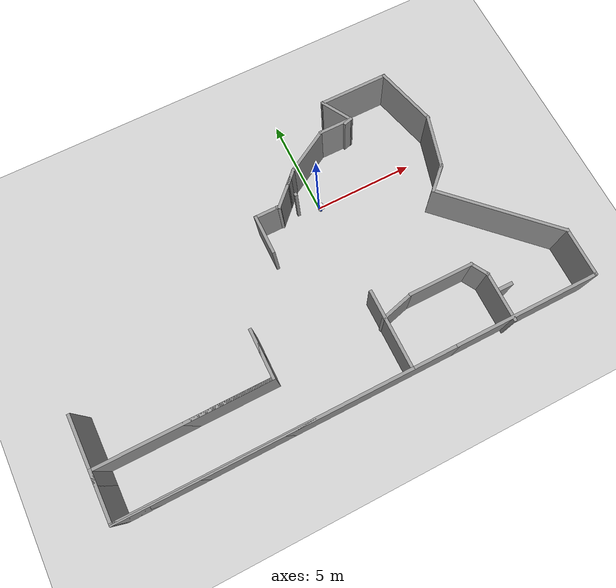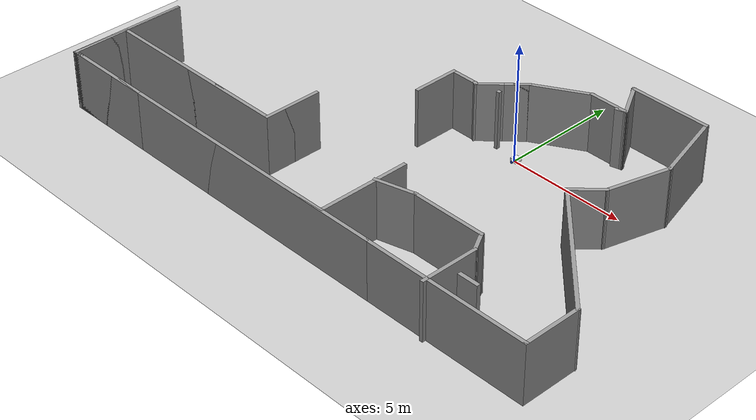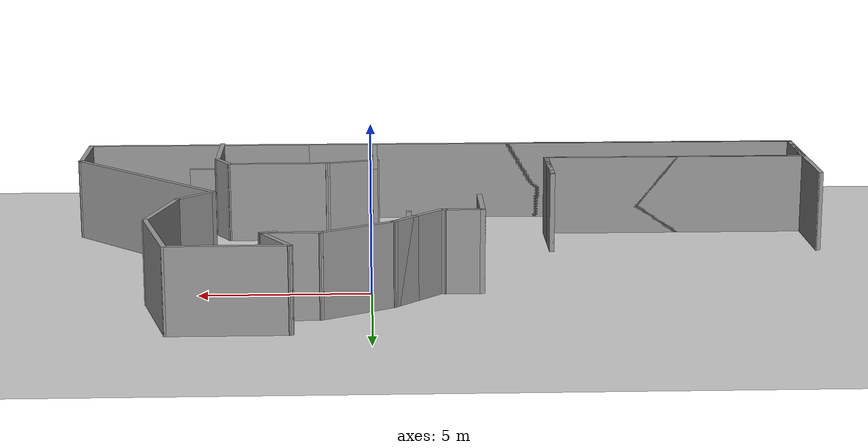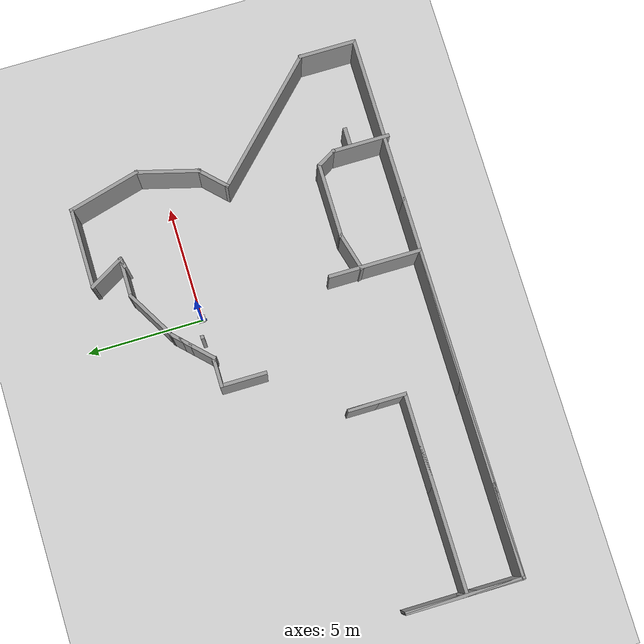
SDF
<sdf version="1.7">
 <world name="default">
  <light name="sun" type="directional">
   <pose>0 0 10 0 -0 0</pose>
   <diffuse>0.8 0.8 0.8 1</diffuse>
   <specular>0.2 0.2 0.2 1</specular>
   <attenuation>
    <range>1000</range>
    <constant>0.9</constant>
    <linear>0.01</linear>
    <quadratic>0.001</quadratic>
   </attenuation>
   <direction>-0.5 0.1 -0.9</direction>
   <spot><inner_angle>0</inner_angle><outer_angle>0</outer_angle><falloff>0</falloff></spot>
  </light>
  <model name="ground_plane">
   <static>1</static>
   <link name="link">
    <collision name="collision">
     <geometry><plane><normal>0 0 1</normal><size>100 100</size></plane></geometry>
     <surface><friction><ode><mu>100</mu><mu2>50</mu2></ode></friction></surface>
    </collision>
    <visual name="visual">
     <cast_shadows>0</cast_shadows>
     <geometry><plane><normal>0 0 1</normal><size>100 100</size></plane></geometry>
     <material>
      <script><uri>file://media/materials/scripts/gazebo.material</uri><name>Gazebo/Grey</name></script>
     </material>
    </visual>
   </link>
  </model>
  <gravity>0 0 -9.8</gravity>
  <magnetic_field>6e-06 2.3e-05 -4.2e-05</magnetic_field>
  <atmosphere type="adiabatic"/>
  <physics type="ode">
   <max_step_size>0.001</max_step_size>
   <real_time_factor>1</real_time_factor>
   <real_time_update_rate>1000</real_time_update_rate>
  </physics>
  <scene><ambient>0.4 0.4 0.4 1</ambient><background>0.7 0.7 0.7 1</background><shadows>1</shadows></scene>
  <audio><device>default</device></audio>
  <spherical_coordinates>
   <surface_model>EARTH_WGS84</surface_model>
   <latitude_deg>0</latitude_deg>
   <longitude_deg>0</longitude_deg>
   <elevation>0</elevation>
   <heading_deg>0</heading_deg>
  </spherical_coordinates>
  <model name="my_bot">
   <link name="base_link">
    <inertial>
     <pose>0.065 0 0.0625 0 -0 0</pose>
     <mass>0.6</mass>
     <inertia>
      <ixx>0.00525625</ixx>
      <ixy>0</ixy>
      <ixz>0.0005625</ixz>
      <iyy>0.00593125</iyy>
      <iyz>0</iyz>
      <izz>0.008275</izz>
     </inertia>
    </inertial>
    <collision name="base_link_fixed_joint_lump__chassis_collision">
     <pose>0.05 0 0.075 0 -0 0</pose>
     <geometry><box><size>0.3 0.3 0.15</size></box></geometry>
    </collision>
    <collision name="base_link_fixed_joint_lump__caster_wheel_collision_1">
     <pose>0.14 0 0 0 -0 0</pose>
     <geometry><sphere><radius>0.05</radius></sphere></geometry>
     <surface><friction><ode><mu>0.001</mu><mu2>0.001</mu2></ode></friction></surface>
    </collision>
    <visual name="base_link_fixed_joint_lump__chassis_visual">
     <pose>0.05 0 0.075 0 -0 0</pose>
     <geometry><box><size>0.3 0.3 0.15</size></box></geometry>
     <material>
      <script><name>Gazebo/White</name><uri>file://media/materials/scripts/gazebo.material</uri></script>
     </material>
    </visual>
    <visual name="base_link_fixed_joint_lump__caster_wheel_visual_1">
     <pose>0.14 0 0 0 -0 0</pose>
     <geometry><sphere><radius>0.05</radius></sphere></geometry>
     <material>
      <script><name>Gazebo/Black</name><uri>file://media/materials/scripts/gazebo.material</uri></script>
     </material>
    </visual>
   </link>
   <joint name="left_wheel_joint" type="revolute">
    <pose relative_to="base_link">0 0.175 0 -1.5708 0 0</pose>
    <parent>base_link</parent>
    <child>left_wheel</child>
    <axis>
     <xyz>0 0 1</xyz>
     <limit><lower>-1e+16</lower><upper>1e+16</upper></limit>
     <dynamics><spring_reference>0</spring_reference><spring_stiffness>0</spring_stiffness></dynamics>
    </axis>
   </joint>
   <link name="left_wheel">
    <pose relative_to="left_wheel_joint">0 0 0 0 -0 0</pose>
    <inertial>
     <mass>0.1</mass>
     <inertia>
      <ixx>7.58333e-05</ixx>
      <ixy>0</ixy>
      <ixz>0</ixz>
      <iyy>7.58333e-05</iyy>
      <iyz>0</iyz>
      <izz>0.000125</izz>
     </inertia>
    </inertial>
    <collision name="left_wheel_collision">
     <geometry><cylinder><length>0.04</length><radius>0.05</radius></cylinder></geometry>
    </collision>
    <visual name="left_wheel_visual">
     <geometry><cylinder><length>0.04</length><radius>0.05</radius></cylinder></geometry>
     <material>
      <script><name>Gazebo/Blue</name><uri>file://media/materials/scripts/gazebo.material</uri></script>
     </material>
    </visual>
   </link>
   <joint name="right_wheel_joint" type="revolute">
    <pose relative_to="base_link">0 -0.175 0 1.5708 -0 0</pose>
    <parent>base_link</parent>
    <child>right_wheel</child>
    <axis>
     <xyz>0 0 -1</xyz>
     <limit><lower>-1e+16</lower><upper>1e+16</upper></limit>
     <dynamics><spring_reference>0</spring_reference><spring_stiffness>0</spring_stiffness></dynamics>
    </axis>
   </joint>
   <link name="right_wheel">
    <pose relative_to="right_wheel_joint">0 0 0 0 -0 0</pose>
    <inertial>
     <mass>0.1</mass>
     <inertia>
      <ixx>7.58333e-05</ixx>
      <ixy>0</ixy>
      <ixz>0</ixz>
      <iyy>7.58333e-05</iyy>
      <iyz>0</iyz>
      <izz>0.000125</izz>
     </inertia>
    </inertial>
    <collision name="right_wheel_collision">
     <geometry><cylinder><length>0.04</length><radius>0.05</radius></cylinder></geometry>
    </collision>
    <visual name="right_wheel_visual">
     <geometry><cylinder><length>0.04</length><radius>0.05</radius></cylinder></geometry>
     <material>
      <script><name>Gazebo/Blue</name><uri>file://media/materials/scripts/gazebo.material</uri></script>
     </material>
    </visual>
   </link>
   <static>0</static>
   <plugin name="diff_drive" filename="libgazebo_ros_diff_drive.so">
    <left_joint>left_wheel_joint</left_joint>
    <right_joint>right_wheel_joint</right_joint>
    <wheel_separation>0.35</wheel_separation>
    <wheel_diameter>0.1</wheel_diameter>
    <max_wheel_torque>200</max_wheel_torque>
    <max_wheel_acceleration>10.0</max_wheel_acceleration>
    <odometry_frame>odom</odometry_frame>
    <robot_base_frame>base_link</robot_base_frame>
    <publish_odom>1</publish_odom>
    <publish_odom_tf>1</publish_odom_tf>
    <publish_wheel_tf>1</publish_wheel_tf>
   </plugin>
   <pose>0.017814 5.7e-05 0.05 0 1e-06 0.000295</pose>
  </model>
  <light name="user_point_light_0" type="point">
   <pose>21.8249 5.31355 1 0 -0 0</pose>
   <diffuse>0.5 0.5 0.5 1</diffuse>
   <specular>0.1 0.1 0.1 1</specular>
   <attenuation>
    <range>20</range>
    <constant>0.5</constant>
    <linear>0.01</linear>
    <quadratic>0.001</quadratic>
   </attenuation>
   <cast_shadows>0</cast_shadows>
   <direction>0 0 -1</direction>
  </light>
  <model name="tuhafWorld">
   <pose>-2.36436 -2.81863 0 0 -0 0</pose>
   <link name="Door_0">
    <collision name="Door_0_Collision">
     <geometry><box><size>0.9 0.17 2</size></box></geometry>
     <pose>0 0 1 0 -0 0</pose>
    </collision>
    <visual name="Door_0_Visual">
     <pose>0 0 1 0 -0 0</pose>
     <geometry><box><size>0.9 0.17 2</size></box></geometry>
     <material>
      <script><uri>file://media/materials/scripts/gazebo.material</uri><name>Gazebo/Grey</name></script>
     </material>
    </visual>
    <pose>7.78225 -5.18129 0 0 -0 0</pose>
   </link>
   <link name="Wall_0">
    <collision name="Wall_0_Collision">
     <geometry><box><size>2 0.15 2.5</size></box></geometry>
     <pose>0 0 1.25 0 -0 0</pose>
    </collision>
    <visual name="Wall_0_Visual">
     <pose>0 0 1.25 0 -0 0</pose>
     <geometry><box><size>2 0.15 2.5</size></box></geometry>
     <material>
      <script><uri>file://media/materials/scripts/gazebo.material</uri><name>Gazebo/Grey</name></script>
      <ambient>1 1 1 1</ambient>
     </material>
     <meta><layer>0</layer></meta>
    </visual>
    <pose>-0.835636 1.86363 0 0 -0 1.5708</pose>
   </link>
   <link name="Wall_1">
    <collision name="Wall_1_Collision">
     <geometry><box><size>1.25 0.15 2.5</size></box></geometry>
     <pose>0 0 1.25 0 -0 0</pose>
    </collision>
    <visual name="Wall_1_Visual">
     <pose>0 0 1.25 0 -0 0</pose>
     <geometry><box><size>1.25 0.15 2.5</size></box></geometry>
     <material>
      <script><uri>file://media/materials/scripts/gazebo.material</uri><name>Gazebo/Grey</name></script>
      <ambient>1 1 1 1</ambient>
     </material>
     <meta><layer>0</layer></meta>
    </visual>
    <pose>-0.285636 2.78863 0 0 -0 0</pose>
   </link>
   <link name="Wall_10">
    <collision name="Wall_10_Collision">
     <geometry><box><size>1.75 0.15 2.5</size></box></geometry>
     <pose>0 0 1.25 0 -0 0</pose>
    </collision>
    <visual name="Wall_10_Visual">
     <pose>0 0 1.25 0 -0 0</pose>
     <geometry><box><size>1.75 0.15 2.5</size></box></geometry>
     <material>
      <script><uri>file://media/materials/scripts/gazebo.material</uri><name>Gazebo/Grey</name></script>
      <ambient>1 1 1 1</ambient>
     </material>
     <meta><layer>0</layer></meta>
    </visual>
    <pose>4.56952 5.32363 0 0 -0 0</pose>
   </link>
   <link name="Wall_11">
    <collision name="Wall_11_Collision">
     <geometry><box><size>0.5 0.15 2.5</size></box></geometry>
     <pose>0 0 1.25 0 -0 0</pose>
    </collision>
    <visual name="Wall_11_Visual">
     <pose>0 0 1.25 0 -0 0</pose>
     <geometry><box><size>0.5 0.15 2.5</size></box></geometry>
     <material>
      <script><uri>file://media/materials/scripts/gazebo.material</uri><name>Gazebo/Grey</name></script>
      <ambient>1 1 1 1</ambient>
     </material>
     <meta><layer>0</layer></meta>
    </visual>
    <pose>5.20049 5.27834 0 0 -0 -2.87979</pose>
   </link>
   <link name="Wall_13">
    <collision name="Wall_13_Collision">
     <geometry><box><size>1.75 0.15 2.5</size></box></geometry>
     <pose>0 0 1.25 0 -0 0</pose>
    </collision>
    <visual name="Wall_13_Visual">
     <pose>0 0 1.25 0 -0 0</pose>
     <geometry><box><size>1.75 0.15 2.5</size></box></geometry>
     <material>
      <script><uri>file://media/materials/scripts/gazebo.material</uri><name>Gazebo/Grey</name></script>
      <ambient>1 1 1 1</ambient>
     </material>
     <meta><layer>0</layer></meta>
    </visual>
    <pose>4.96952 6.01645 0 0 -0 2.0944</pose>
   </link>
   <link name="Wall_14">
    <collision name="Wall_14_Collision">
     <geometry><box><size>3.5 0.15 2.5</size></box></geometry>
     <pose>0 0 1.25 0 -0 0</pose>
    </collision>
    <visual name="Wall_14_Visual">
     <pose>0 0 1.25 0 -0 0</pose>
     <geometry><box><size>3.5 0.15 2.5</size></box></geometry>
     <material>
      <script><uri>file://media/materials/scripts/gazebo.material</uri><name>Gazebo/Grey</name></script>
      <ambient>1 1 1 1</ambient>
     </material>
     <meta><layer>0</layer></meta>
    </visual>
    <pose>6.24452 6.70927 0 0 -0 0</pose>
   </link>
   <link name="Wall_15">
    <collision name="Wall_15_Collision">
     <geometry><box><size>3.25 0.15 2.5</size></box></geometry>
     <pose>0 0 1.25 0 -0 0</pose>
    </collision>
    <visual name="Wall_15_Visual">
     <pose>0 0 1.25 0 -0 0</pose>
     <geometry><box><size>3.25 0.15 2.5</size></box></geometry>
     <material>
      <script><uri>file://media/materials/scripts/gazebo.material</uri><name>Gazebo/Grey</name></script>
      <ambient>1 1 1 1</ambient>
     </material>
     <meta><layer>0</layer></meta>
    </visual>
    <pose>8.32069 5.21209 0 0 -0 -1.309</pose>
   </link>
   <link name="Wall_16">
    <collision name="Wall_16_Collision">
     <geometry><box><size>2.75 0.15 2.5</size></box></geometry>
     <pose>0 0 1.25 0 -0 0</pose>
    </collision>
    <visual name="Wall_16_Visual">
     <pose>0 0 1.25 0 -0 0</pose>
     <geometry><box><size>2.75 0.15 2.5</size></box></geometry>
     <material>
      <script><uri>file://media/materials/scripts/gazebo.material</uri><name>Gazebo/Grey</name></script>
      <ambient>1 1 1 1</ambient>
     </material>
     <meta><layer>0</layer></meta>
    </visual>
    <pose>8.3854 2.4592 0 0 -0 -1.8326</pose>
   </link>
   <link name="Wall_17">
    <collision name="Wall_17_Collision">
     <geometry><box><size>1.5 0.15 2.5</size></box></geometry>
     <pose>0 0 1.25 0 -0 0</pose>
    </collision>
    <visual name="Wall_17_Visual">
     <pose>0 0 1.25 0 -0 0</pose>
     <geometry><box><size>1.5 0.15 2.5</size></box></geometry>
     <material>
      <script><uri>file://media/materials/scripts/gazebo.material</uri><name>Gazebo/Grey</name></script>
      <ambient>1 1 1 1</ambient>
     </material>
     <meta><layer>0</layer></meta>
    </visual>
    <pose>7.57164 0.7262 0 0 -0 -2.35619</pose>
   </link>
   <link name="Wall_19">
    <collision name="Wall_19_Collision">
     <geometry><box><size>6.5 0.15 2.5</size></box></geometry>
     <pose>0 0 1.25 0 -0 0</pose>
    </collision>
    <visual name="Wall_19_Visual">
     <pose>0 0 1.25 0 -0 0</pose>
     <geometry><box><size>6.5 0.15 2.5</size></box></geometry>
     <material>
      <script><uri>file://media/materials/scripts/gazebo.material</uri><name>Gazebo/Grey</name></script>
      <ambient>1 1 1 1</ambient>
     </material>
     <meta><layer>0</layer></meta>
    </visual>
    <pose>9.3394 -1.99616 0 0 -0 -0.785398</pose>
   </link>
   <link name="Wall_2">
    <collision name="Wall_2_Collision">
     <geometry><box><size>0.239443 0.15 2.5</size></box></geometry>
     <pose>0 0 1.25 0 -0 0</pose>
    </collision>
    <visual name="Wall_2_Visual">
     <pose>0 0 1.25 0 -0 0</pose>
     <geometry><box><size>0.239443 0.15 2.5</size></box></geometry>
     <material>
      <script><uri>file://media/materials/scripts/gazebo.material</uri><name>Gazebo/Grey</name></script>
      <ambient>1 1 1 1</ambient>
     </material>
     <meta><layer>0</layer></meta>
    </visual>
    <pose>0.304364 2.76863 0 0 -0 -0.463648</pose>
   </link>
   <link name="Wall_20">
    <collision name="Wall_20_Collision">
     <geometry><box><size>2.5 0.15 2.5</size></box></geometry>
     <pose>0 0 1.25 0 -0 0</pose>
    </collision>
    <visual name="Wall_20_Visual">
     <pose>0 0 1.25 0 -0 0</pose>
     <geometry><box><size>2.5 0.15 2.5</size></box></geometry>
     <material>
      <script><uri>file://media/materials/scripts/gazebo.material</uri><name>Gazebo/Grey</name></script>
      <ambient>1 1 1 1</ambient>
     </material>
     <meta><layer>0</layer></meta>
    </visual>
    <pose>11.5845 -5.41622 0 0 -0 -1.5708</pose>
   </link>
   <link name="Wall_21">
    <collision name="Wall_21_Collision">
     <geometry><box><size>7.25 0.15 2.5</size></box></geometry>
     <pose>0 0 1.25 0 -0 0</pose>
    </collision>
    <visual name="Wall_21_Visual">
     <pose>0 0 1.25 0 -0 0</pose>
     <geometry><box><size>7.25 0.15 2.5</size></box></geometry>
     <material>
      <script><uri>file://media/materials/scripts/gazebo.material</uri><name>Gazebo/Grey</name></script>
      <ambient>1 1 1 1</ambient>
     </material>
     <meta><layer>0</layer></meta>
    </visual>
    <pose>8.03447 -6.59122 0 0 -0 3.14159</pose>
   </link>
   <link name="Wall_22">
    <collision name="Wall_22_Collision">
     <geometry><box><size>16.25 0.15 2.5</size></box></geometry>
     <pose>0 0 1.25 0 -0 0</pose>
    </collision>
    <visual name="Wall_22_Visual">
     <pose>0 0 1.25 0 -0 0</pose>
     <geometry><box><size>16.25 0.15 2.5</size></box></geometry>
     <material>
      <script><uri>file://media/materials/scripts/gazebo.material</uri><name>Gazebo/Grey</name></script>
      <ambient>1 1 1 1</ambient>
     </material>
     <meta><layer>0</layer></meta>
    </visual>
    <pose>-3.56553 -6.59122 0 0 -0 3.14159</pose>
   </link>
   <link name="Wall_23">
    <collision name="Wall_23_Collision">
     <geometry><box><size>5 0.15 2.5</size></box></geometry>
     <pose>0 0 1.25 0 -0 0</pose>
    </collision>
    <visual name="Wall_23_Visual">
     <pose>0 0 1.25 0 -0 0</pose>
     <geometry><box><size>5 0.15 2.5</size></box></geometry>
     <material>
      <script><uri>file://media/materials/scripts/gazebo.material</uri><name>Gazebo/Grey</name></script>
      <ambient>1 1 1 1</ambient>
     </material>
     <meta><layer>0</layer></meta>
    </visual>
    <pose>-11.6155 -4.16622 0 0 -0 1.5708</pose>
   </link>
   <link name="Wall_24">
    <collision name="Wall_24_Collision">
     <geometry><box><size>5 0.15 2.5</size></box></geometry>
     <pose>0 0 1.25 0 -0 0</pose>
    </collision>
    <visual name="Wall_24_Visual">
     <pose>0 0 1.25 0 -0 0</pose>
     <geometry><box><size>5 0.15 2.5</size></box></geometry>
     <material>
      <script><uri>file://media/materials/scripts/gazebo.material</uri><name>Gazebo/Grey</name></script>
      <ambient>1 1 1 1</ambient>
     </material>
     <meta><layer>0</layer></meta>
    </visual>
    <pose>-11.6155 -4.16622 0 0 -0 -1.5708</pose>
   </link>
   <link name="Wall_25">
    <collision name="Wall_25_Collision">
     <geometry><box><size>4 0.15 2.5</size></box></geometry>
     <pose>0 0 1.25 0 -0 0</pose>
    </collision>
    <visual name="Wall_25_Visual">
     <pose>0 0 1.25 0 -0 0</pose>
     <geometry><box><size>4 0.15 2.5</size></box></geometry>
     <material>
      <script><uri>file://media/materials/scripts/gazebo.material</uri><name>Gazebo/Grey</name></script>
      <ambient>1 1 1 1</ambient>
     </material>
     <meta><layer>0</layer></meta>
    </visual>
    <pose>-9.69053 -6.59122 0 0 -0 0</pose>
   </link>
   <link name="Wall_26">
    <collision name="Wall_26_Collision">
     <geometry><box><size>0.15 0.15 2.5</size></box></geometry>
     <pose>0 0 1.25 0 -0 0</pose>
    </collision>
    <visual name="Wall_26_Visual">
     <pose>0 0 1.25 0 -0 0</pose>
     <geometry><box><size>0.15 0.15 2.5</size></box></geometry>
     <material>
      <script><uri>file://media/materials/scripts/gazebo.material</uri><name>Gazebo/Grey</name></script>
      <ambient>1 1 1 1</ambient>
     </material>
     <meta><layer>0</layer></meta>
    </visual>
    <pose>-7.76553 -6.59122 0 0 -0 0</pose>
   </link>
   <link name="Wall_27">
    <collision name="Wall_27_Collision">
     <geometry><box><size>4 0.15 2.5</size></box></geometry>
     <pose>0 0 1.25 0 -0 0</pose>
    </collision>
    <visual name="Wall_27_Visual">
     <pose>0 0 1.25 0 -0 0</pose>
     <geometry><box><size>4 0.15 2.5</size></box></geometry>
     <material>
      <script><uri>file://media/materials/scripts/gazebo.material</uri><name>Gazebo/Grey</name></script>
      <ambient>1 1 1 1</ambient>
     </material>
     <meta><layer>0</layer></meta>
    </visual>
    <pose>-9.69053 -6.59122 0 0 -0 3.14159</pose>
   </link>
   <link name="Wall_28">
    <collision name="Wall_28_Collision">
     <geometry><box><size>2.5 0.15 2.5</size></box></geometry>
     <pose>0 0 1.25 0 -0 0</pose>
    </collision>
    <visual name="Wall_28_Visual">
     <pose>0 0 1.25 0 -0 0</pose>
     <geometry><box><size>2.5 0.15 2.5</size></box></geometry>
     <material>
      <script><uri>file://media/materials/scripts/gazebo.material</uri><name>Gazebo/Grey</name></script>
      <ambient>1 1 1 1</ambient>
     </material>
     <meta><layer>0</layer></meta>
    </visual>
    <pose>-11.6155 -5.41622 0 0 -0 1.5708</pose>
   </link>
   <link name="Wall_29">
    <collision name="Wall_29_Collision">
     <geometry><box><size>8.5 0.15 2.5</size></box></geometry>
     <pose>0 0 1.25 0 -0 0</pose>
    </collision>
    <visual name="Wall_29_Visual">
     <pose>0 0 1.25 0 -0 0</pose>
     <geometry><box><size>8.5 0.15 2.5</size></box></geometry>
     <material>
      <script><uri>file://media/materials/scripts/gazebo.material</uri><name>Gazebo/Grey</name></script>
      <ambient>1 1 1 1</ambient>
     </material>
     <meta><layer>0</layer></meta>
    </visual>
    <pose>-7.44053 -4.24123 0 0 -0 0</pose>
   </link>
   <link name="Wall_3">
    <collision name="Wall_3_Collision">
     <geometry><box><size>1.25 0.15 2.5</size></box></geometry>
     <pose>0 0 1.25 0 -0 0</pose>
    </collision>
    <visual name="Wall_3_Visual">
     <pose>0 0 1.25 0 -0 0</pose>
     <geometry><box><size>1.25 0.15 2.5</size></box></geometry>
     <material>
      <script><uri>file://media/materials/scripts/gazebo.material</uri><name>Gazebo/Grey</name></script>
      <ambient>1 1 1 1</ambient>
     </material>
     <meta><layer>0</layer></meta>
    </visual>
    <pose>0.743273 3.15754 0 0 -0 0.785398</pose>
   </link>
   <link name="Wall_30">
    <collision name="Wall_30_Collision">
     <geometry><box><size>2.5 0.15 2.5</size></box></geometry>
     <pose>0 0 1.25 0 -0 0</pose>
    </collision>
    <visual name="Wall_30_Visual">
     <pose>0 0 1.25 0 -0 0</pose>
     <geometry><box><size>2.5 0.15 2.5</size></box></geometry>
     <material>
      <script><uri>file://media/materials/scripts/gazebo.material</uri><name>Gazebo/Grey</name></script>
      <ambient>1 1 1 1</ambient>
     </material>
     <meta><layer>0</layer></meta>
    </visual>
    <pose>-3.26553 -3.06623 0 0 -0 1.5708</pose>
   </link>
   <link name="Wall_31">
    <collision name="Wall_31_Collision">
     <geometry><box><size>2.5 0.15 2.5</size></box></geometry>
     <pose>0 0 1.25 0 -0 0</pose>
    </collision>
    <visual name="Wall_31_Visual">
     <pose>0 0 1.25 0 -0 0</pose>
     <geometry><box><size>2.5 0.15 2.5</size></box></geometry>
     <material>
      <script><uri>file://media/materials/scripts/gazebo.material</uri><name>Gazebo/Grey</name></script>
      <ambient>1 1 1 1</ambient>
     </material>
     <meta><layer>0</layer></meta>
    </visual>
    <pose>-3.26553 -3.06623 0 0 -0 -1.5708</pose>
   </link>
   <link name="Wall_32">
    <collision name="Wall_32_Collision">
     <geometry><box><size>8.5 0.15 2.5</size></box></geometry>
     <pose>0 0 1.25 0 -0 0</pose>
    </collision>
    <visual name="Wall_32_Visual">
     <pose>0 0 1.25 0 -0 0</pose>
     <geometry><box><size>8.5 0.15 2.5</size></box></geometry>
     <material>
      <script><uri>file://media/materials/scripts/gazebo.material</uri><name>Gazebo/Grey</name></script>
      <ambient>1 1 1 1</ambient>
     </material>
     <meta><layer>0</layer></meta>
    </visual>
    <pose>-7.44053 -4.24123 0 0 -0 3.14159</pose>
   </link>
   <link name="Wall_33">
    <collision name="Wall_33_Collision">
     <geometry><box><size>2.5 0.15 2.5</size></box></geometry>
     <pose>0 0 1.25 0 -0 0</pose>
    </collision>
    <visual name="Wall_33_Visual">
     <pose>0 0 1.25 0 -0 0</pose>
     <geometry><box><size>2.5 0.15 2.5</size></box></geometry>
     <material>
      <script><uri>file://media/materials/scripts/gazebo.material</uri><name>Gazebo/Grey</name></script>
      <ambient>1 1 1 1</ambient>
     </material>
     <meta><layer>0</layer></meta>
    </visual>
    <pose>-11.6155 -5.41622 0 0 -0 -1.5708</pose>
   </link>
   <link name="Wall_34">
    <collision name="Wall_34_Collision">
     <geometry><box><size>14 0.15 2.5</size></box></geometry>
     <pose>0 0 1.25 0 -0 0</pose>
    </collision>
    <visual name="Wall_34_Visual">
     <pose>0 0 1.25 0 -0 0</pose>
     <geometry><box><size>14 0.15 2.5</size></box></geometry>
     <material>
      <script><uri>file://media/materials/scripts/gazebo.material</uri><name>Gazebo/Grey</name></script>
      <ambient>1 1 1 1</ambient>
     </material>
     <meta><layer>0</layer></meta>
    </visual>
    <pose>-4.69053 -6.59122 0 0 -0 0</pose>
   </link>
   <link name="Wall_35">
    <collision name="Wall_35_Collision">
     <geometry><box><size>4 0.15 2.5</size></box></geometry>
     <pose>0 0 1.25 0 -0 0</pose>
    </collision>
    <visual name="Wall_35_Visual">
     <pose>0 0 1.25 0 -0 0</pose>
     <geometry><box><size>4 0.15 2.5</size></box></geometry>
     <material>
      <script><uri>file://media/materials/scripts/gazebo.material</uri><name>Gazebo/Grey</name></script>
      <ambient>1 1 1 1</ambient>
     </material>
     <meta><layer>0</layer></meta>
    </visual>
    <pose>2.23447 -4.66622 0 0 -0 1.5708</pose>
   </link>
   <link name="Wall_38">
    <collision name="Wall_38_Collision">
     <geometry><box><size>1.75 0.15 2.5</size></box></geometry>
     <pose>0 0 1.25 0 -0 0</pose>
    </collision>
    <visual name="Wall_38_Visual">
     <pose>0 0 1.25 0 -0 0</pose>
     <geometry><box><size>1.75 0.15 2.5</size></box></geometry>
     <material>
      <script><uri>file://media/materials/scripts/gazebo.material</uri><name>Gazebo/Grey</name></script>
      <ambient>1 1 1 1</ambient>
     </material>
     <meta><layer>0</layer></meta>
    </visual>
    <pose>2.97212 -3.85766 0 0 -0 0.261799</pose>
   </link>
   <link name="Wall_41">
    <collision name="Wall_41_Collision">
     <geometry><box><size>3.25 0.15 2.5</size></box></geometry>
     <pose>0 0 1.25 0 -0 0</pose>
    </collision>
    <visual name="Wall_41_Visual">
     <pose>0 0 1.25 0 -0 0</pose>
     <geometry><box><size>3.25 0.15 2.5</size></box></geometry>
     <material>
      <script><uri>file://media/materials/scripts/gazebo.material</uri><name>Gazebo/Grey</name></script>
      <ambient>1 1 1 1</ambient>
     </material>
     <meta><layer>0</layer></meta>
    </visual>
    <pose>5.29486 -3.6506 0 0 -0 0</pose>
   </link>
   <link name="Wall_42">
    <collision name="Wall_42_Collision">
     <geometry><box><size>1 0.15 2.5</size></box></geometry>
     <pose>0 0 1.25 0 -0 0</pose>
    </collision>
    <visual name="Wall_42_Visual">
     <pose>0 0 1.25 0 -0 0</pose>
     <geometry><box><size>1 0.15 2.5</size></box></geometry>
     <material>
      <script><uri>file://media/materials/scripts/gazebo.material</uri><name>Gazebo/Grey</name></script>
      <ambient>1 1 1 1</ambient>
     </material>
     <meta><layer>0</layer></meta>
    </visual>
    <pose>7.05736 -4.01867 0 0 -0 -1.0472</pose>
   </link>
   <link name="Wall_43">
    <collision name="Wall_43_Collision">
     <geometry><box><size>2.5 0.15 2.5</size></box></geometry>
     <pose>0 0 1.25 0 -0 0</pose>
    </collision>
    <visual name="Wall_43_Visual">
     <pose>0 0 1.25 0 -0 0</pose>
     <geometry><box><size>2.5 0.15 2.5</size></box></geometry>
     <material>
      <script><uri>file://media/materials/scripts/gazebo.material</uri><name>Gazebo/Grey</name></script>
      <ambient>1 1 1 1</ambient>
     </material>
     <meta><layer>0</layer></meta>
    </visual>
    <pose>7.26986 -5.56173 0 0 -0 -1.5708</pose>
   </link>
   <link name="Wall_5">
    <collision name="Wall_5_Collision">
     <geometry><box><size>0.15 0.15 2.5</size></box></geometry>
     <pose>0 0 1.25 0 -0 0</pose>
    </collision>
    <visual name="Wall_5_Visual">
     <pose>0 0 1.25 0 -0 0</pose>
     <geometry><box><size>0.15 0.15 2.5</size></box></geometry>
     <material>
      <script><uri>file://media/materials/scripts/gazebo.material</uri><name>Gazebo/Grey</name></script>
      <ambient>1 1 1 1</ambient>
     </material>
     <meta><layer>0</layer></meta>
    </visual>
    <pose>1.29747 2.9869 0 0 -0 0</pose>
   </link>
   <link name="Wall_7">
    <collision name="Wall_7_Collision">
     <geometry><box><size>1.00161 0.15 2.5</size></box></geometry>
     <pose>0 0 1.25 0 -0 0</pose>
    </collision>
    <visual name="Wall_7_Visual">
     <pose>0 0 1.25 0 -0 0</pose>
     <geometry><box><size>1.00161 0.15 2.5</size></box></geometry>
     <material>
      <script><uri>file://media/materials/scripts/gazebo.material</uri><name>Gazebo/Grey</name></script>
      <ambient>1 1 1 1</ambient>
     </material>
     <meta><layer>0</layer></meta>
    </visual>
    <pose>1.43327 3.84754 0 0 -0 -2.35619</pose>
   </link>
   <link name="Wall_8">
    <collision name="Wall_8_Collision">
     <geometry><box><size>1.00161 0.15 2.5</size></box></geometry>
     <pose>0 0 1.25 0 -0 0</pose>
    </collision>
    <visual name="Wall_8_Visual">
     <pose>0 0 1.25 0 -0 0</pose>
     <geometry><box><size>1.00161 0.15 2.5</size></box></geometry>
     <material>
      <script><uri>file://media/materials/scripts/gazebo.material</uri><name>Gazebo/Grey</name></script>
      <ambient>1 1 1 1</ambient>
     </material>
     <meta><layer>0</layer></meta>
    </visual>
    <pose>1.43327 3.84754 0 0 -0 0.785398</pose>
   </link>
   <link name="Wall_9">
    <collision name="Wall_9_Collision">
     <geometry><box><size>2.5 0.15 2.5</size></box></geometry>
     <pose>0 0 1.25 0 -0 0</pose>
    </collision>
    <visual name="Wall_9_Visual">
     <pose>0 0 1.25 0 -0 0</pose>
     <geometry><box><size>2.5 0.15 2.5</size></box></geometry>
     <material>
      <script><uri>file://media/materials/scripts/gazebo.material</uri><name>Gazebo/Grey</name></script>
      <ambient>1 1 1 1</ambient>
     </material>
     <meta><layer>0</layer></meta>
    </visual>
    <pose>2.75194 4.73613 0 0 -0 0.523599</pose>
   </link>
   <static>1</static>
  </model>
 </world>
</sdf>
